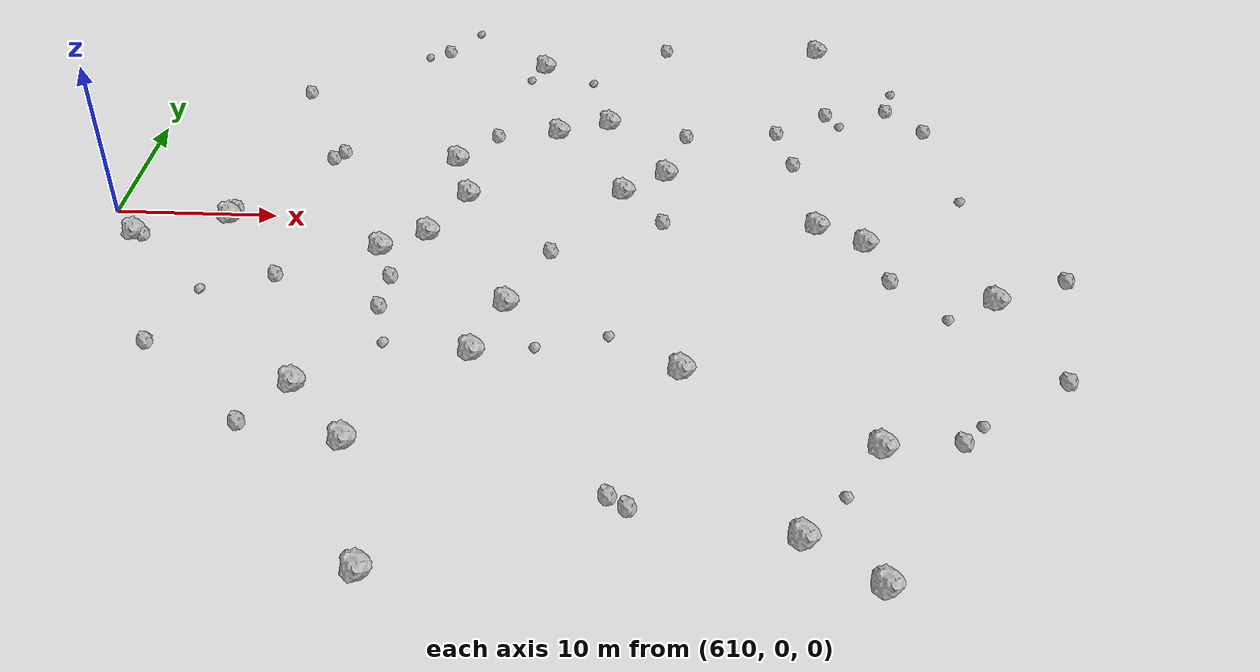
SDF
<sdf version="1.6">
 <world name="default">
  <include><uri>model://sun</uri></include>
  <model name="rock1_16_3">
   <include><uri>model://rock1</uri><pose>629.6666094720933 -1.7151122761129116 0.5 0 0 0</pose></include>
  </model>
  <model name="rock1_16_4">
   <include><uri>model://rock1</uri><pose>655.8154076080593 -1.6470357998312721 0.5 0 0 0</pose></include>
  </model>
  <model name="rock1_16_5">
   <include><uri>model://rock1</uri><pose>654.3131717218694 -18.529219725452638 0.5 0 0 0</pose></include>
  </model>
  <model name="rock1_16_6">
   <include><uri>model://rock1</uri><pose>641.3458579425097 3.256961677641904 0.5 0 0 0</pose></include>
  </model>
  <model name="rock1_16_7">
   <include><uri>model://rock1</uri><pose>624.6205069271329 -15.327014438395016 0.5 0 0 0</pose></include>
  </model>
  <model name="rock1_16_8">
   <include><uri>model://rock1</uri><pose>633.5410032905608 -12.418834172915062 0.5 0 0 0</pose></include>
  </model>
  <model name="rock1_16_9">
   <include><uri>model://rock1</uri><pose>662.3317399679262 -6.813330071602753 0.5 0 0 0</pose></include>
  </model>
  <model name="rock1_16_10">
   <include><uri>model://rock1</uri><pose>631.6268327464412 2.513787489764148 0.5 0 0 0</pose></include>
  </model>
  <model name="rock1_16_11">
   <include><uri>model://rock1</uri><pose>628.0103439183598 -19.254446093246614 0.5 0 0 0</pose></include>
  </model>
  <model name="rock1_16_12">
   <include><uri>model://rock1</uri><pose>653.1190086623462 0.015048532390618874 0.5 0 0 0</pose></include>
  </model>
  <model name="rock1_16_13">
   <include><uri>model://rock1</uri><pose>653.2600544955462 -26.866953671547172 0.5 0 0 0</pose></include>
  </model>
  <model name="rock1_16_14">
   <include><uri>model://rock1</uri><pose>635.0102275674486 -8.236905969037217 0.5 0 0 0</pose></include>
  </model>
  <model name="rock1_16_15">
   <include><uri>model://rock1</uri><pose>627.0865042368266 -3.3420923592345524 0.5 0 0 0</pose></include>
  </model>
  <model name="rock1_16_16">
   <include><uri>model://rock1</uri><pose>636.8647457525942 10.381698588475544 0.5 0 0 0</pose></include>
  </model>
  <model name="rock1_16_17">
   <include><uri>model://rock1</uri><pose>630.2342719788755 -27.10411584316361 0.5 0 0 0</pose></include>
  </model>
  <model name="rock1_16_18">
   <include><uri>model://rock1</uri><pose>630.4429748463224 6.59359965641292 0.5 0 0 0</pose></include>
  </model>
  <model name="rock1_16_19">
   <include><uri>model://rock1</uri><pose>644.6758446653826 -13.366857609771976 0.5 0 0 0</pose></include>
  </model>
  <model name="rock1_16_20">
   <include><uri>model://rock1</uri><pose>640.2562868878654 11.770219308762336 0.5 0 0 0</pose></include>
  </model>
  <model name="rock1_16_21">
   <include><uri>model://rock1</uri><pose>635.3265156571259 19.65954831643998 0.5 0 0 0</pose></include>
  </model>
  <model name="rock1_16_22">
   <include><uri>model://rock1</uri><pose>655.5378617530142 23.044441193279106 0.5 0 0 0</pose></include>
  </model>
  <model name="rock1_16_23">
   <include><uri>model://rock1</uri><pose>611.9661659960623 -2.525998838237882 0.5 0 0 0</pose></include>
  </model>
  <model name="rock1_16_24">
   <include><uri>model://rock1</uri><pose>644.0614227409881 5.477324958473297 0.5 0 0 0</pose></include>
  </model>
  <model name="rock1_16_25">
   <include><uri>model://rock1</uri><pose>617.2370530418543 -0.5489287120015014 0.5 0 0 0</pose></include>
  </model>
  <model name="rock1_16_26">
   <include><uri>model://rock1</uri><pose>649.9224614375627 -24.37164365631827 0.5 0 0 0</pose></include>
  </model>
  <model name="rock2_16_0">
   <include><uri>model://rock2</uri><pose>664.602093169065 -13.22991762626096 0.3 0 0 0</pose></include>
  </model>
  <model name="rock2_16_1">
   <include><uri>model://rock2</uri><pose>618.846223600853 15.14399464519802 0.3 0 0 0</pose></include>
  </model>
  <model name="rock2_16_2">
   <include><uri>model://rock2</uri><pose>615.9253161759768 -12.333176751312102 0.3 0 0 0</pose></include>
  </model>
  <model name="rock2_16_3">
   <include><uri>model://rock2</uri><pose>643.7787192415166 0.15557392054110153 0.3 0 0 0</pose></include>
  </model>
  <model name="rock2_16_4">
   <include><uri>model://rock2</uri><pose>655.123695809435 13.694046362347258 0.3 0 0 0</pose></include>
  </model>
  <model name="rock2_16_5">
   <include><uri>model://rock2</uri><pose>641.0434375212468 -22.19489643799425 0.3 0 0 0</pose></include>
  </model>
  <model name="rock2_16_6">
   <include><uri>model://rock2</uri><pose>612.5280926485319 -2.603213982622421 0.3 0 0 0</pose></include>
  </model>
  <model name="rock2_16_7">
   <include><uri>model://rock2</uri><pose>628.1140069121117 -5.9938816355236 0.3 0 0 0</pose></include>
  </model>
  <model name="rock2_16_8">
   <include><uri>model://rock2</uri><pose>656.6868906970809 -5.118320261016244 0.3 0 0 0</pose></include>
  </model>
  <model name="rock2_16_9">
   <include><uri>model://rock2</uri><pose>658.329405506564 -17.901479426912594 0.3 0 0 0</pose></include>
  </model>
  <model name="rock2_16_10">
   <include><uri>model://rock2</uri><pose>645.4514898383884 10.320519512009184 0.3 0 0 0</pose></include>
  </model>
  <model name="rock2_16_11">
   <include><uri>model://rock2</uri><pose>641.9837264499847 -22.84943648150275 0.3 0 0 0</pose></include>
  </model>
  <model name="rock2_16_12">
   <include><uri>model://rock2</uri><pose>661.4919403241219 11.700653836173068 0.3 0 0 0</pose></include>
  </model>
  <model name="rock2_16_13">
   <include><uri>model://rock2</uri><pose>622.8606013481085 7.249308470461713 0.3 0 0 0</pose></include>
  </model>
  <model name="rock2_16_14">
   <include><uri>model://rock2</uri><pose>652.2997154651647 7.119138142828611 0.3 0 0 0</pose></include>
  </model>
  <model name="rock2_16_15">
   <include><uri>model://rock2</uri><pose>637.158980831437 -3.1469811074377105 0.3 0 0 0</pose></include>
  </model>
  <model name="rock2_16_16">
   <include><uri>model://rock2</uri><pose>666.7568518512178 -4.592773287493152 0.3 0 0 0</pose></include>
  </model>
  <model name="rock2_16_17">
   <include><uri>model://rock2</uri><pose>659.3483191372442 14.394480229136597 0.3 0 0 0</pose></include>
  </model>
  <model name="rock2_16_18">
   <include><uri>model://rock2</uri><pose>644.2365625987584 22.773797868962532 0.3 0 0 0</pose></include>
  </model>
  <model name="rock2_16_19">
   <include><uri>model://rock2</uri><pose>627.9348948244249 -8.746740761037685 0.3 0 0 0</pose></include>
  </model>
  <model name="rock2_16_20">
   <include><uri>model://rock2</uri><pose>622.2885177951978 6.446632237678401 0.3 0 0 0</pose></include>
  </model>
  <model name="rock2_16_21">
   <include><uri>model://rock2</uri><pose>622.503566801374 -18.17755980770586 0.3 0 0 0</pose></include>
  </model>
  <model name="rock2_16_22">
   <include><uri>model://rock2</uri><pose>617.4390111811891 0.44544243444222076 0.3 0 0 0</pose></include>
  </model>
  <model name="rock2_16_23">
   <include><uri>model://rock2</uri><pose>651.5356430670238 11.062724592576835 0.3 0 0 0</pose></include>
  </model>
  <model name="rock2_16_24">
   <include><uri>model://rock2</uri><pose>621.4801374931955 -6.160863301130245 0.3 0 0 0</pose></include>
  </model>
  <model name="rock2_16_25">
   <include><uri>model://rock2</uri><pose>627.9588880547702 21.88713208628196 0.3 0 0 0</pose></include>
  </model>
  <model name="rock2_16_26">
   <include><uri>model://rock2</uri><pose>632.7860612333652 9.76786658285674 0.3 0 0 0</pose></include>
  </model>
  <model name="rock3_16_0">
   <include><uri>model://rock3</uri><pose>662.3112071714171 3.3128550559594743 0.2 0 0 0</pose></include>
  </model>
  <model name="rock3_16_1">
   <include><uri>model://rock3</uri><pose>629.9036420951549 25.000532870788412 0.2 0 0 0</pose></include>
  </model>
  <model name="rock3_16_2">
   <include><uri>model://rock3</uri><pose>628.6710567481437 -11.816038940261958 0.2 0 0 0</pose></include>
  </model>
  <model name="rock3_16_3">
   <include><uri>model://rock3</uri><pose>652.1579446426347 -21.745631354209564 0.2 0 0 0</pose></include>
  </model>
  <model name="rock3_16_4">
   <include><uri>model://rock3</uri><pose>659.3701950136985 -8.442985391935643 0.2 0 0 0</pose></include>
  </model>
  <model name="rock3_16_5">
   <include><uri>model://rock3</uri><pose>638.9107105165606 17.531883546659017 0.2 0 0 0</pose></include>
  </model>
  <model name="rock3_16_6">
   <include><uri>model://rock3</uri><pose>655.9144684947918 12.188998699114151 0.2 0 0 0</pose></include>
  </model>
  <model name="rock3_16_7">
   <include><uri>model://rock3</uri><pose>660.1089293949864 16.878600689145024 0.2 0 0 0</pose></include>
  </model>
  <model name="rock3_16_8">
   <include><uri>model://rock3</uri><pose>617.4488962576 -7.668052959227531 0.2 0 0 0</pose></include>
  </model>
  <model name="rock3_16_9">
   <include><uri>model://rock3</uri><pose>634.3941282647055 17.7695814058781 0.2 0 0 0</pose></include>
  </model>
  <model name="rock3_16_10">
   <include><uri>model://rock3</uri><pose>659.51862462501 -16.741555470973985 0.2 0 0 0</pose></include>
  </model>
  <model name="rock3_16_11">
   <include><uri>model://rock3</uri><pose>636.861566384952 -11.854278032397726 0.2 0 0 0</pose></include>
  </model>
  <model name="rock3_16_12">
   <include><uri>model://rock3</uri><pose>640.7884618101709 -10.722457229675712 0.2 0 0 0</pose></include>
  </model>
  <model name="rock3_16_13">
   <include><uri>model://rock3</uri><pose>626.5029513385941 20.97688874531883 0.2 0 0 0</pose></include>
  </model>
 </world>
</sdf>
